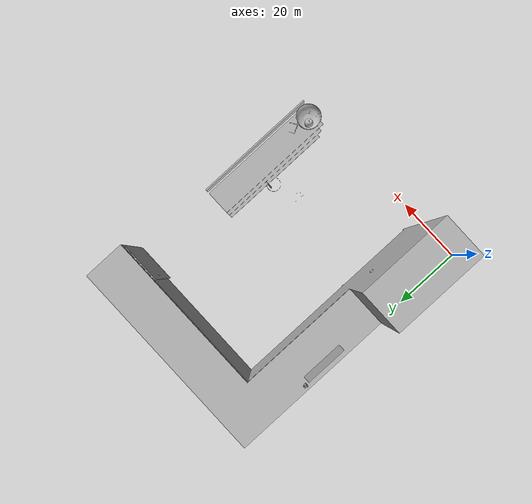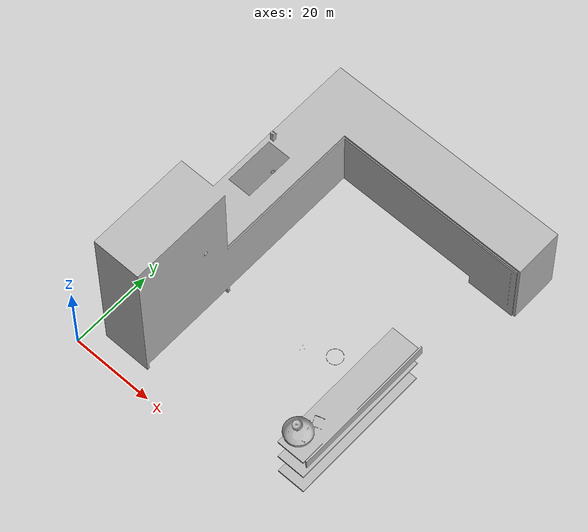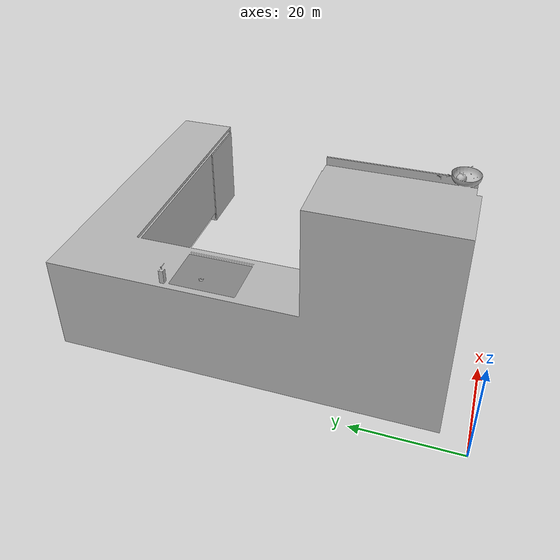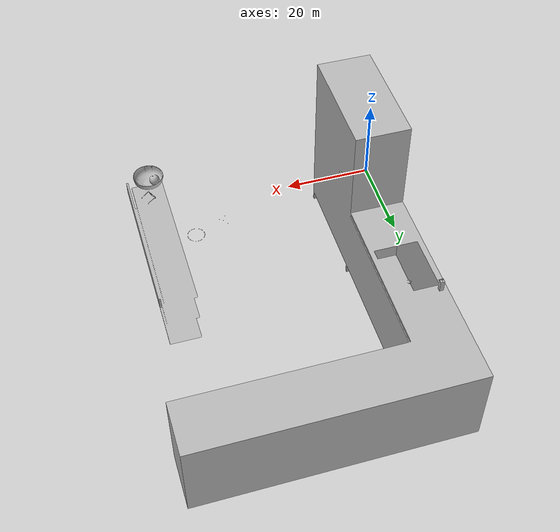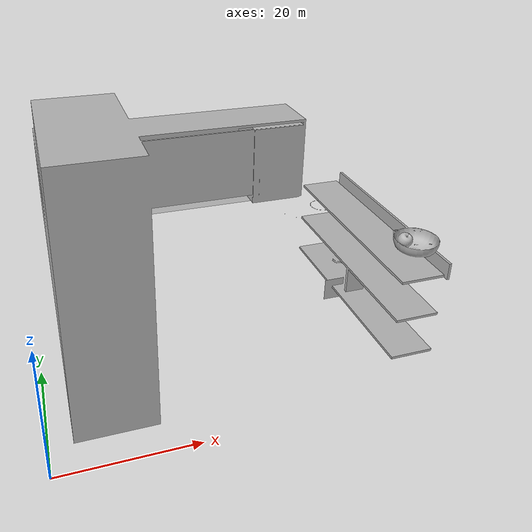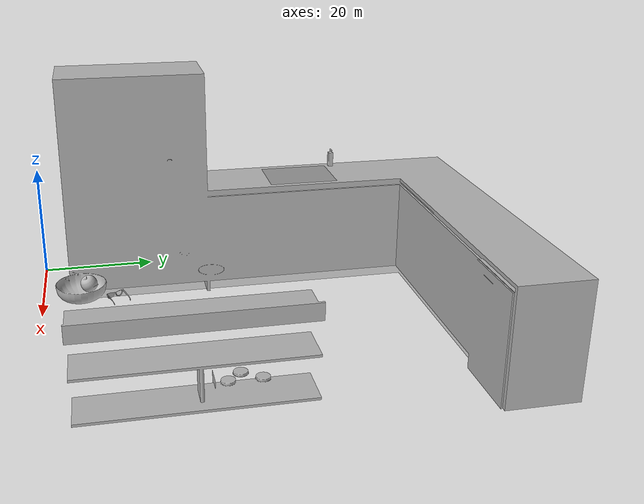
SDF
<?xml version='1.0' encoding='utf-8'?>
<sdf version="1.6">
  <world name="default">
    <!-- A gazebo links attacher -->
    <plugin name="ros_link_attacher_plugin" filename="libgazebo_ros_link_attacher.so"/>

    <gravity>0 0 -9.8</gravity>
    <physics default="0" name="default_physics" type="ode">
      <max_step_size>0.001</max_step_size>
      <real_time_factor>1</real_time_factor>
      <real_time_update_rate>1000</real_time_update_rate>
    </physics>

    <model name="Kitchen">
        <include>
            <uri>model://Kitchen</uri>
        </include>
        <pose frame="">0.0 0.0 -0.090092 0 0 0</pose>
	</model>

  </world>
</sdf>

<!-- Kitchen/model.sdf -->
<sdf version="1.5">
    <model name="kitchen">
        <static>true</static>
        <link name="kitchen">
            <visual name="visual">
                <geometry>
                    <mesh>
                        <uri>model://Kitchen/meshes/model.dae</uri>
                        <scale>0.5 0.5 0.5</scale>
                        <pose>0 0 0 0 0 0</pose>
                    </mesh>
                </geometry>
            </visual>
            <collision name="collision">
                <geometry>
                    <mesh>
                        <uri>model://Kitchen/meshes/model.dae</uri>
                        <scale>0.5 0.5 0.5</scale>
                    </mesh>
                </geometry>
            </collision>
        </link>
    </model>
</sdf>
